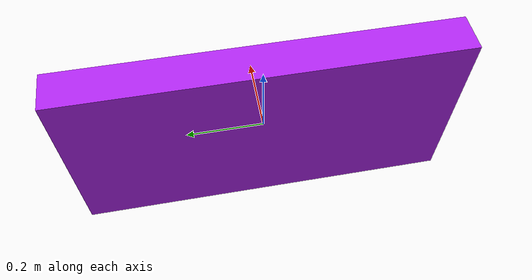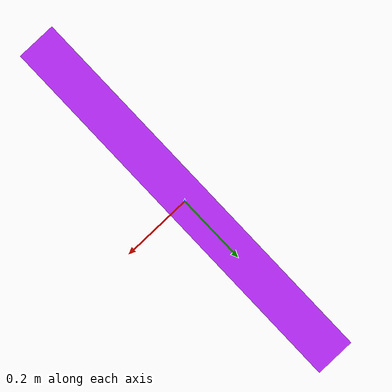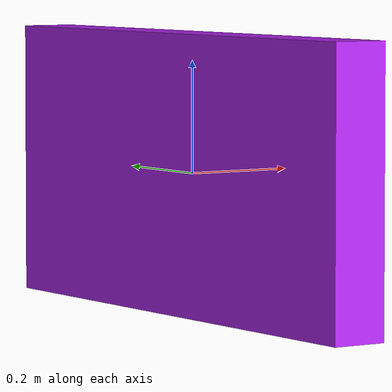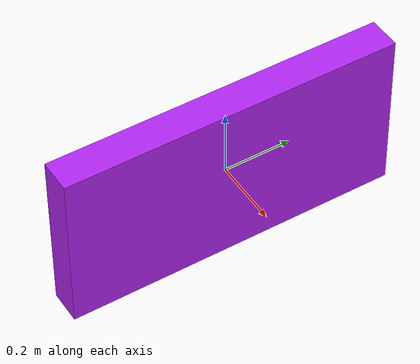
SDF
<?xml version="1.0"?>
<sdf version="1.8">
  <model name="tof_wide_panel">
    <static>true</static>
    <link name="link">
      <collision name="collision">
        <geometry>
          <box>
            <size>0.10 1.00 0.50</size>
          </box>
        </geometry>
      </collision>
      <visual name="visual">
        <geometry>
          <box>
            <size>0.10 1.00 0.50</size>
          </box>
        </geometry>
        <material>
          <ambient>0.70 0.15 0.95 1</ambient>
          <diffuse>0.70 0.15 0.95 1</diffuse>
        </material>
      </visual>
    </link>
  </model>
</sdf>
